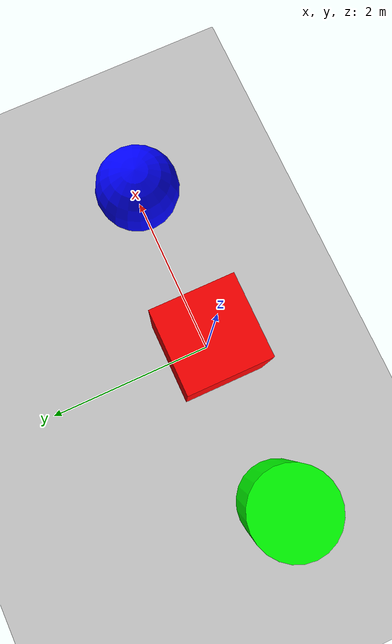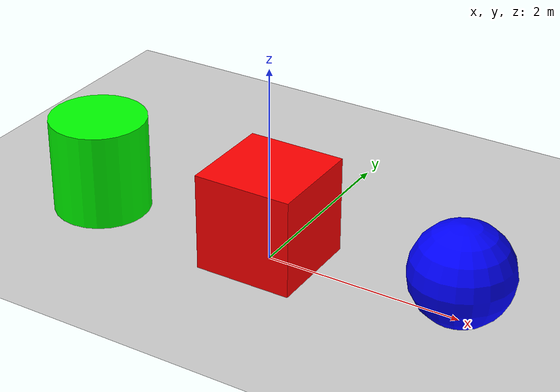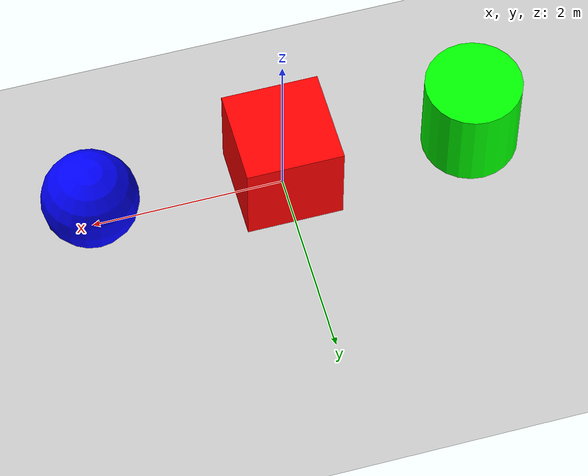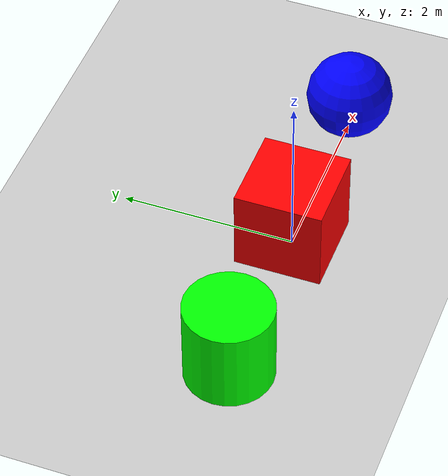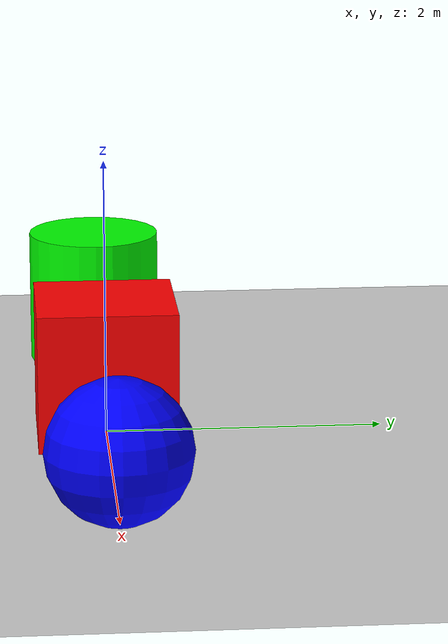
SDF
<?xml version="1.0" ?>
<sdf version="1.6">
  <world name="world_with_objects">
    <physics name="1ms" type="ignored">
      <max_step_size>0.001</max_step_size>
      <real_time_factor>1.0</real_time_factor>
    </physics>
    <plugin
      filename="ignition-gazebo-physics-system"
      name="ignition::gazebo::systems::Physics">
    </plugin>
    <plugin
      filename="ignition-gazebo-user-commands-system"
      name="ignition::gazebo::systems::UserCommands">
    </plugin>
    <plugin
      filename="ignition-gazebo-scene-broadcaster-system"
      name="ignition::gazebo::systems::SceneBroadcaster">
    </plugin>

    <light type="directional" name="sun">
      <cast_shadows>true</cast_shadows>
      <pose>0 0 10 0 0 0</pose>
      <diffuse>0.8 0.8 0.8 1</diffuse>
      <specular>0.2 0.2 0.2 1</specular>
      <attenuation>
        <range>1000</range>
        <constant>0.9</constant>
        <linear>0.01</linear>
        <quadratic>0.001</quadratic>
      </attenuation>
      <direction>-0.5 0.1 -0.9</direction>
    </light>

    <model name="ground_plane">
      <static>true</static>
      <link name="link">
        <collision name="collision">
          <geometry>
            <plane>
              <normal>0 0 1</normal>
              <size>100 100</size>
            </plane>
          </geometry>
        </collision>
        <visual name="visual">
          <geometry>
            <plane>
              <normal>0 0 1</normal>
              <size>100 100</size>
            </plane>
          </geometry>
          <material>
            <ambient>0.8 0.8 0.8 1</ambient>
            <diffuse>0.8 0.8 0.8 1</diffuse>
            <specular>0.8 0.8 0.8 1</specular>
          </material>
        </visual>
      </link>
    </model>

    <!-- 빨간색 박스 추가 -->
    <include>
      <uri>box.sdf</uri>
      <pose>0 0 0.5 0 0 0</pose>
      <name>red_box</name>
    </include>

    <!-- 파란색 구체 추가 -->
    <include>
      <uri>sphere.sdf</uri>
      <pose>2 0 0.5 0 0 0</pose>
      <name>blue_sphere</name>
    </include>

    <!-- 녹색 실린더 추가 -->
    <model name="green_cylinder">
      <pose>-2 0 0.5 0 0 0</pose>
      <link name="cylinder_link">
        <inertial>
          <mass>1.0</mass>
          <inertia>
            <ixx>0.1458</ixx>
            <ixy>0</ixy>
            <ixz>0</ixz>
            <iyy>0.1458</iyy>
            <iyz>0</iyz>
            <izz>0.125</izz>
          </inertia>
        </inertial>
        <collision name="cylinder_collision">
          <geometry>
            <cylinder>
              <radius>0.5</radius>
              <length>1.0</length>
            </cylinder>
          </geometry>
        </collision>
        <visual name="cylinder_visual">
          <geometry>
            <cylinder>
              <radius>0.5</radius>
              <length>1.0</length>
            </cylinder>
          </geometry>
          <material>
            <ambient>0 1 0 1</ambient>
            <diffuse>0 1 0 1</diffuse>
            <specular>0 1 0 1</specular>
          </material>
        </visual>
      </link>
    </model>
  </world>
</sdf>

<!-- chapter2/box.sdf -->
<sdf version="1.6">
  <model name="box">
    <pose>0 0 0.5 0 0 0</pose>
    <link name="box_link">
      <inertial>
        <mass>1.0</mass>
        <inertia>
          <ixx>0.166667</ixx>
          <ixy>0</ixy>
          <ixz>0</ixz>
          <iyy>0.166667</iyy>
          <iyz>0</iyz>
          <izz>0.166667</izz>
        </inertia>
      </inertial>
      <collision name="box_collision">
        <geometry>
          <box>
            <size>1 1 1</size>
          </box>
        </geometry>
      </collision>
      <visual name="box_visual">
        <geometry>
          <box>
            <size>1 1 1</size>
          </box>
        </geometry>
        <material>
          <ambient>1 0 0 1</ambient>
          <diffuse>1 0 0 1</diffuse>
          <specular>1 0 0 1</specular>
        </material>
      </visual>
    </link>
  </model>
</sdf>

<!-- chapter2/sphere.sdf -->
<sdf version="1.6">
  <model name="sphere">
    <pose>2 0 0.5 0 0 0</pose>
    <link name="sphere_link">
      <inertial>
        <mass>1.0</mass>
        <inertia>
          <ixx>0.1</ixx>
          <ixy>0</ixy>
          <ixz>0</ixz>
          <iyy>0.1</iyy>
          <iyz>0</iyz>
          <izz>0.1</izz>
        </inertia>
      </inertial>
      <collision name="sphere_collision">
        <geometry>
          <sphere>
            <radius>0.5</radius>
          </sphere>
        </geometry>
      </collision>
      <visual name="sphere_visual">
        <geometry>
          <sphere>
            <radius>0.5</radius>
          </sphere>
        </geometry>
        <material>
          <ambient>0 0 1 1</ambient>
          <diffuse>0 0 1 1</diffuse>
          <specular>0 0 1 1</specular>
        </material>
      </visual>
    </link>
  </model>
</sdf>
